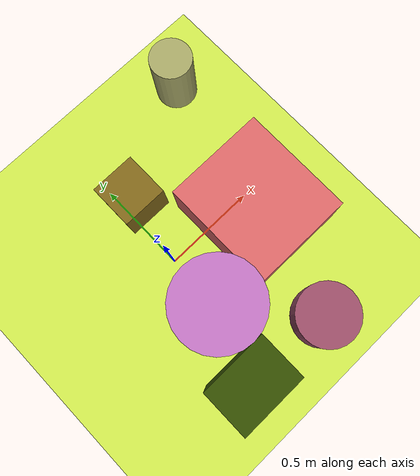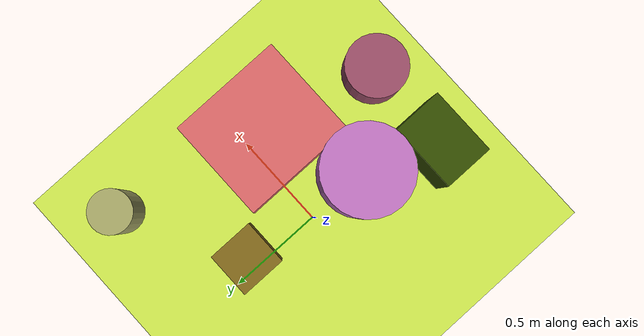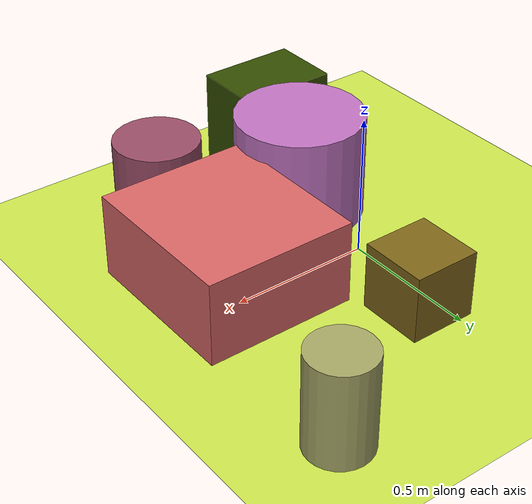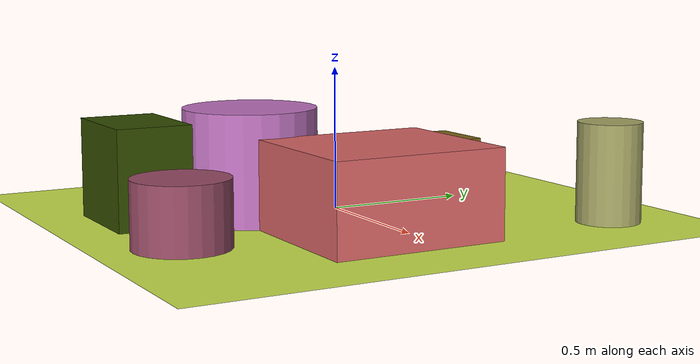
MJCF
<mujoco>
   <asset>
<texture type="skybox" builtin="gradient" rgb1="0.2 0.6 0.3" rgb2="0.6 0.5 0.0" width="256" height="256"/>
<texture name="gradient_0" builtin="gradient" rgb1="0.2 0.6 0.0" rgb2="0.8 0.2 0.2" width="200" height="200"/>
<texture name="checker_1" builtin="checker" type="2d" rgb1="0.8 0.6 0.1" rgb2="0.5 0.7 0.7" width="200" height="200"/>
<texture name="checker_2" builtin="checker" type="2d" rgb1="0.6 0.2 0.8" rgb2="0.9 0.7 0.7" width="200" height="200"/>
<texture name="checker_3" builtin="checker" type="2d" rgb1="1.0 0.3 0.7" rgb2="0.7 0.5 0.1" width="200" height="200"/>
<texture name="flat_4" builtin="flat" rgb1="0.6 0.3 0.4" rgb2="0.6 0.3 0.4"  width="200" height="200"/>
<texture name="flat_5" builtin="flat" rgb1="0.2 0.3 0.0" rgb2="0.2 0.3 0.0"  width="200" height="200"/><material name="gradient_0_mat" reflectance="0" texture="gradient_0" texuniform="true"/>
<material name="checker_1_mat" reflectance="0" texrepeat="2 2" texture="checker_1" texuniform="false" />
<material name="checker_2_mat" reflectance="0" texrepeat="9 9" texture="checker_2" texuniform="false" />
<material name="checker_3_mat" reflectance="0" texrepeat="2 2" texture="checker_3" texuniform="false" />
<material name="flat_4_mat" reflectance="0" texture="flat_4" texuniform="true"/>
<material name="flat_5_mat" reflectance="0" texture="flat_5" texuniform="true"/>
   </asset>

   <worldbody>
      <light diffuse=".9 .9 .9" pos="0 0 3" dir="0 0 -1"/>
     <geom type="plane" size="1 1 0.1" rgba="0.8 0.9 0.3 1"/>
<geom type="box" pos="0.07 0.37 0.12" size="0.12 0.12 0.12" material="gradient_0_mat" />
<geom type="cylinder" pos="0.66 0.69 0.17" size="0.11 0.17 0.17" material="checker_1_mat" />
<geom type="cylinder" pos="-0.0 -0.33 0.19" size="0.23 0.19 0.19" material="checker_2_mat" />
<geom type="box" pos="0.48 -0.1 0.15" size="0.27 0.3 0.15" material="checker_3_mat" />
<geom type="cylinder" pos="0.34 -0.72 0.11" size="0.16 0.11 0.11" material="flat_4_mat" />
<geom type="box" pos="-0.13 -0.69 0.17" size="0.18 0.13 0.17" material="flat_5_mat" /><camera euler="60 0 180" fovy="60" name="camera_a" pos="0 -1.5 1"></camera>   </worldbody>
</mujoco>
